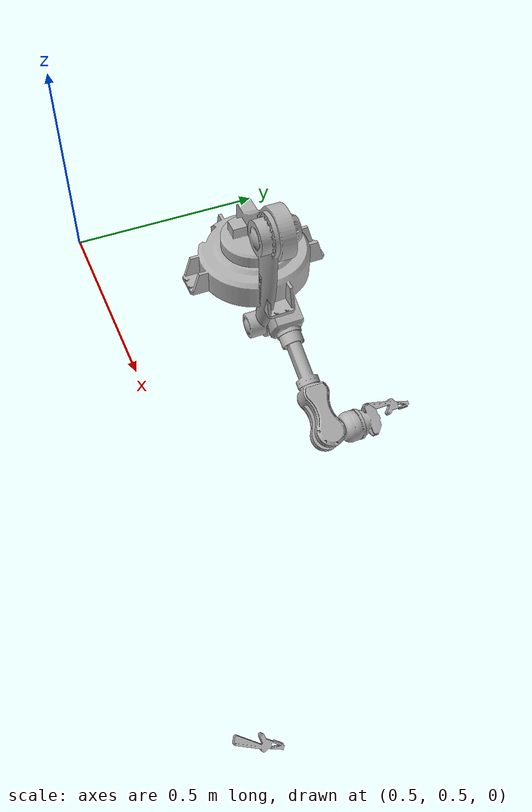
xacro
<?xml version="1.0" ?>
<robot name="robot_arm_urdf" xmlns:xacro="http://www.ros.org/wiki/xacro">

<xacro:include filename="$(find robot_arm_urdf_description)/urdf/materials.xacro" />
<xacro:include filename="$(find robot_arm_urdf_description)/urdf/robot_arm_urdf.trans" />
<xacro:include filename="$(find robot_arm_urdf_description)/urdf/robot_arm_urdf.gazebo" />
<link name="base_link">
  <inertial>
    <origin xyz="0.7299489098050387 0.9211145159593311 -0.003978753513613337" rpy="0 0 0"/>
    <mass value="45.313552829493865"/>
    <inertia ixx="0.286515" iyy="0.286515" izz="0.523139" ixy="0.006277" iyz="-0.000324" ixz="-0.000324"/>
  </inertial>
  <visual>
    <origin xyz="0 0 0" rpy="0 0 0"/>
    <geometry>
      <mesh filename="package://robot_arm_urdf_description/meshes/base_link.stl" scale="0.001 0.001 0.001"/>
    </geometry>
    <material name="silver"/>
  </visual>
  <collision>
    <origin xyz="0 0 0" rpy="0 0 0"/>
    <geometry>
      <mesh filename="package://robot_arm_urdf_description/meshes/base_link.stl" scale="0.001 0.001 0.001"/>
    </geometry>
  </collision>
</link>

<link name="link_1_1">
  <inertial>
    <origin xyz="0.05547469859400389 0.0019076328093232675 0.08222497118379582" rpy="0 0 0"/>
    <mass value="18.479095273079245"/>
    <inertia ixx="0.094682" iyy="0.189045" izz="0.130289" ixy="-0.00493" iyz="-0.003737" ixz="-0.072077"/>
  </inertial>
  <visual>
    <origin xyz="-0.728523 -0.919689 -0.04131" rpy="0 0 0"/>
    <geometry>
      <mesh filename="package://robot_arm_urdf_description/meshes/link_1_1.stl" scale="0.001 0.001 0.001"/>
    </geometry>
    <material name="silver"/>
  </visual>
  <collision>
    <origin xyz="-0.728523 -0.919689 -0.04131" rpy="0 0 0"/>
    <geometry>
      <mesh filename="package://robot_arm_urdf_description/meshes/link_1_1.stl" scale="0.001 0.001 0.001"/>
    </geometry>
  </collision>
</link>

<link name="link_2_1">
  <inertial>
    <origin xyz="-0.007889035262540256 -0.03522711435981485 0.1392997587206527" rpy="0 0 0"/>
    <mass value="7.036902684320055"/>
    <inertia ixx="0.137215" iyy="0.139817" izz="0.004767" ixy="0.000252" iyz="-0.000637" ixz="0.001302"/>
  </inertial>
  <visual>
    <origin xyz="-0.878523 -0.919689 -0.20131" rpy="0 0 0"/>
    <geometry>
      <mesh filename="package://robot_arm_urdf_description/meshes/link_2_1.stl" scale="0.001 0.001 0.001"/>
    </geometry>
    <material name="silver"/>
  </visual>
  <collision>
    <origin xyz="-0.878523 -0.919689 -0.20131" rpy="0 0 0"/>
    <geometry>
      <mesh filename="package://robot_arm_urdf_description/meshes/link_2_1.stl" scale="0.001 0.001 0.001"/>
    </geometry>
  </collision>
</link>

<link name="lin_3_1">
  <inertial>
    <origin xyz="0.027636883851309135 0.04590036665831099 0.04394820303244229" rpy="0 0 0"/>
    <mass value="10.082568263366674"/>
    <inertia ixx="0.015592" iyy="0.052081" izz="0.04708" ixy="-0.000566" iyz="-0.001062" ixz="-0.008168"/>
  </inertial>
  <visual>
    <origin xyz="-0.878523 -0.899689 -0.55131" rpy="0 0 0"/>
    <geometry>
      <mesh filename="package://robot_arm_urdf_description/meshes/lin_3_1.stl" scale="0.001 0.001 0.001"/>
    </geometry>
    <material name="silver"/>
  </visual>
  <collision>
    <origin xyz="-0.878523 -0.899689 -0.55131" rpy="0 0 0"/>
    <geometry>
      <mesh filename="package://robot_arm_urdf_description/meshes/lin_3_1.stl" scale="0.001 0.001 0.001"/>
    </geometry>
  </collision>
</link>

<link name="link_4_1">
  <inertial>
    <origin xyz="0.07875202527355363 -1.8848039107233205e-07 0.013886603415202536" rpy="0 0 0"/>
    <mass value="4.835467052165052"/>
    <inertia ixx="0.004815" iyy="0.016759" izz="0.015159" ixy="1.9e-05" iyz="-0.00011" ixz="-0.001882"/>
  </inertial>
  <visual>
    <origin xyz="-1.088352 -0.947689 -0.634002" rpy="0 0 0"/>
    <geometry>
      <mesh filename="package://robot_arm_urdf_description/meshes/link_4_1.stl" scale="0.001 0.001 0.001"/>
    </geometry>
    <material name="silver"/>
  </visual>
  <collision>
    <origin xyz="-1.088352 -0.947689 -0.634002" rpy="0 0 0"/>
    <geometry>
      <mesh filename="package://robot_arm_urdf_description/meshes/link_4_1.stl" scale="0.001 0.001 0.001"/>
    </geometry>
  </collision>
</link>

<link name="link_5_1">
  <inertial>
    <origin xyz="-0.004342850935737053 -0.05812006081435839 0.024630886505736527" rpy="0 0 0"/>
    <mass value="2.469305642949175"/>
    <inertia ixx="0.00247" iyy="0.001747" izz="0.002487" ixy="-1.5e-05" iyz="8.7e-05" ixz="-3e-06"/>
  </inertial>
  <visual>
    <origin xyz="-1.228147 -0.945728 -0.635892" rpy="0 0 0"/>
    <geometry>
      <mesh filename="package://robot_arm_urdf_description/meshes/link_5_1.stl" scale="0.001 0.001 0.001"/>
    </geometry>
    <material name="silver"/>
  </visual>
  <collision>
    <origin xyz="-1.228147 -0.945728 -0.635892" rpy="0 0 0"/>
    <geometry>
      <mesh filename="package://robot_arm_urdf_description/meshes/link_5_1.stl" scale="0.001 0.001 0.001"/>
    </geometry>
  </collision>
</link>

<link name="link_6_1">
  <inertial>
    <origin xyz="-9.560422361376553e-05 -0.006260879329750613 0.0005391148419688907" rpy="0 0 0"/>
    <mass value="0.5999254507989497"/>
    <inertia ixx="0.000254" iyy="0.000315" izz="0.000296" ixy="-0.0" iyz="-2e-06" ixz="-1.2e-05"/>
  </inertial>
  <visual>
    <origin xyz="-1.223114 -0.843867 -0.66444" rpy="0 0 0"/>
    <geometry>
      <mesh filename="package://robot_arm_urdf_description/meshes/link_6_1.stl" scale="0.001 0.001 0.001"/>
    </geometry>
    <material name="silver"/>
  </visual>
  <collision>
    <origin xyz="-1.223114 -0.843867 -0.66444" rpy="0 0 0"/>
    <geometry>
      <mesh filename="package://robot_arm_urdf_description/meshes/link_6_1.stl" scale="0.001 0.001 0.001"/>
    </geometry>
  </collision>
</link>

<link name="201150_arm_8_1">
  <inertial>
    <origin xyz="-0.8165476397479572 1.2887887211154174 0.5190795214401218" rpy="0 0 0"/>
    <mass value="0.0018372819236357237"/>
    <inertia ixx="0.0" iyy="0.0" izz="0.0" ixy="0.0" iyz="-0.0" ixz="0.0"/>
  </inertial>
  <visual>
    <origin xyz="-2.078736 0.467417 -0.157874" rpy="0 0 0"/>
    <geometry>
      <mesh filename="package://robot_arm_urdf_description/meshes/201150_arm_8_1.stl" scale="0.001 0.001 0.001"/>
    </geometry>
    <material name="silver"/>
  </visual>
  <collision>
    <origin xyz="-2.078736 0.467417 -0.157874" rpy="0 0 0"/>
    <geometry>
      <mesh filename="package://robot_arm_urdf_description/meshes/201150_arm_8_1.stl" scale="0.001 0.001 0.001"/>
    </geometry>
  </collision>
</link>

<link name="201150_arm_8_2">
  <inertial>
    <origin xyz="-0.8760432617283416 1.209732732943569 0.5096056220794594" rpy="0 0 0"/>
    <mass value="0.0018372819236357237"/>
    <inertia ixx="0.0" iyy="0.0" izz="0.0" ixy="0.0" iyz="-0.0" ixz="0.0"/>
  </inertial>
  <visual>
    <origin xyz="-2.059389 0.388981 -0.14625" rpy="0 0 0"/>
    <geometry>
      <mesh filename="package://robot_arm_urdf_description/meshes/201150_arm_8_2.stl" scale="0.001 0.001 0.001"/>
    </geometry>
    <material name="silver"/>
  </visual>
  <collision>
    <origin xyz="-2.059389 0.388981 -0.14625" rpy="0 0 0"/>
    <geometry>
      <mesh filename="package://robot_arm_urdf_description/meshes/201150_arm_8_2.stl" scale="0.001 0.001 0.001"/>
    </geometry>
  </collision>
</link>

<link name="grp_2_1">
  <inertial>
    <origin xyz="1.4030855882008075 -0.7859836317379246 -0.40192552154346695" rpy="0 0 0"/>
    <mass value="0.3016933412423669"/>
    <inertia ixx="0.000328" iyy="4.6e-05" izz="0.000356" ixy="-7.4e-05" iyz="8e-06" ixz="-1e-06"/>
  </inertial>
  <visual>
    <origin xyz="0.157787 -1.557114 -1.078881" rpy="0 0 0"/>
    <geometry>
      <mesh filename="package://robot_arm_urdf_description/meshes/grp_2_1.stl" scale="0.001 0.001 0.001"/>
    </geometry>
    <material name="silver"/>
  </visual>
  <collision>
    <origin xyz="0.157787 -1.557114 -1.078881" rpy="0 0 0"/>
    <geometry>
      <mesh filename="package://robot_arm_urdf_description/meshes/grp_2_1.stl" scale="0.001 0.001 0.001"/>
    </geometry>
  </collision>
</link>

<link name="grp_2_2">
  <inertial>
    <origin xyz="-0.4510100026229269 -1.384759698451449 -0.8453559495570071" rpy="0 0 0"/>
    <mass value="0.3016933412423669"/>
    <inertia ixx="0.000341" iyy="3.7e-05" izz="0.000351" ixy="3.9e-05" iyz="3.9e-05" ixz="-8e-06"/>
  </inertial>
  <visual>
    <origin xyz="-1.645407 -2.154231 -1.508804" rpy="0 0 0"/>
    <geometry>
      <mesh filename="package://robot_arm_urdf_description/meshes/grp_2_2.stl" scale="0.001 0.001 0.001"/>
    </geometry>
    <material name="silver"/>
  </visual>
  <collision>
    <origin xyz="-1.645407 -2.154231 -1.508804" rpy="0 0 0"/>
    <geometry>
      <mesh filename="package://robot_arm_urdf_description/meshes/grp_2_2.stl" scale="0.001 0.001 0.001"/>
    </geometry>
  </collision>
</link>

<joint name="joint_1" type="revolute">
  <origin xyz="0.728523 0.919689 0.04131" rpy="0 0 0"/>
  <parent link="base_link"/>
  <child link="link_1_1"/>
  <axis xyz="0.0 -0.0 1.0"/>
  <limit upper="0.0" lower="-6.195919" effort="100" velocity="100"/>
</joint>

<joint name="joint_2" type="revolute">
  <origin xyz="0.15 0.0 0.16" rpy="0 0 0"/>
  <parent link="link_1_1"/>
  <child link="link_2_1"/>
  <axis xyz="0.0 -1.0 -0.0"/>
  <limit upper="4.537856" lower="1.48353" effort="100" velocity="100"/>
</joint>

<joint name="joint_3" type="revolute">
  <origin xyz="0.0 -0.02 0.35" rpy="0 0 0"/>
  <parent link="link_2_1"/>
  <child link="lin_3_1"/>
  <axis xyz="-0.0 1.0 0.0"/>
  <limit upper="5.934119" lower="1.308997" effort="100" velocity="100"/>
</joint>

<joint name="joint_4" type="revolute">
  <origin xyz="0.209829 0.048 0.082692" rpy="0 0 0"/>
  <parent link="lin_3_1"/>
  <child link="link_4_1"/>
  <axis xyz="0.984808 -0.0 0.173648"/>
  <limit upper="-0.087266" lower="-6.108652" effort="100" velocity="100"/>
</joint>

<joint name="joint_5" type="revolute">
  <origin xyz="0.139795 -0.001961 0.00189" rpy="0 0 0"/>
  <parent link="link_4_1"/>
  <child link="link_5_1"/>
  <axis xyz="-0.172987 0.087156 0.98106"/>
  <limit upper="3.490659" lower="-0.436332" effort="100" velocity="100"/>
</joint>

<joint name="joint_6" type="revolute">
  <origin xyz="-0.005033 -0.101861 0.028548" rpy="0 0 0"/>
  <parent link="link_5_1"/>
  <child link="link_6_1"/>
  <axis xyz="-0.015134 -0.996195 0.085832"/>
  <limit upper="-0.087266" lower="-6.195919" effort="100" velocity="100"/>
</joint>

<joint name="Rigid 7" type="fixed">
  <origin xyz="0.855622 -1.311284 -0.506566" rpy="0 0 0"/>
  <parent link="link_6_1"/>
  <child link="201150_arm_8_1"/>
</joint>

<joint name="Rigid 8" type="fixed">
  <origin xyz="0.836275 -1.232848 -0.51819" rpy="0 0 0"/>
  <parent link="link_6_1"/>
  <child link="201150_arm_8_2"/>
</joint>

<joint name="joint_9" type="revolute">
  <origin xyz="-2.236523 2.024531 0.921007" rpy="0 0 0"/>
  <parent link="201150_arm_8_1"/>
  <child link="grp_2_1"/>
  <axis xyz="-0.258161 0.086824 0.962193"/>
  <limit upper="1.134464" lower="0.0" effort="100" velocity="100"/>
</joint>

<joint name="joint_10" type="revolute">
  <origin xyz="-0.413982 2.543212 1.362554" rpy="0 0 0"/>
  <parent link="201150_arm_8_2"/>
  <child link="grp_2_2"/>
  <axis xyz="-0.258161 0.086824 0.962193"/>
  <limit upper="-0.087266" lower="-1.134464" effort="100" velocity="100"/>
</joint>

</robot>

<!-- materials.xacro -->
<robot name="robot_arm_urdf" xmlns:xacro="http://www.ros.org/wiki/xacro" >

<material name="silver">
  <color rgba="0.700 0.700 0.700 1.000"/>
</material>

</robot>

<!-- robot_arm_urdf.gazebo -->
<robot name="robot_arm_urdf" xmlns:xacro="http://www.ros.org/wiki/xacro" >

<xacro:property name="body_color" value="Gazebo/Silver" />

<gazebo>
  <plugin name="control" filename="libgazebo_ros_control.so"/>
</gazebo>
<gazebo reference="base_link">
  <material>${body_color}</material>
  <mu1>0.2</mu1>
  <mu2>0.2</mu2>
  <selfCollide>true</selfCollide>
  <gravity>true</gravity>
</gazebo>

<gazebo reference="link_1_1">
  <material>${body_color}</material>
  <mu1>0.2</mu1>
  <mu2>0.2</mu2>
  <selfCollide>true</selfCollide>
</gazebo>

<gazebo reference="link_2_1">
  <material>${body_color}</material>
  <mu1>0.2</mu1>
  <mu2>0.2</mu2>
  <selfCollide>true</selfCollide>
</gazebo>

<gazebo reference="lin_3_1">
  <material>${body_color}</material>
  <mu1>0.2</mu1>
  <mu2>0.2</mu2>
  <selfCollide>true</selfCollide>
</gazebo>

<gazebo reference="link_4_1">
  <material>${body_color}</material>
  <mu1>0.2</mu1>
  <mu2>0.2</mu2>
  <selfCollide>true</selfCollide>
</gazebo>

<gazebo reference="link_5_1">
  <material>${body_color}</material>
  <mu1>0.2</mu1>
  <mu2>0.2</mu2>
  <selfCollide>true</selfCollide>
</gazebo>

<gazebo reference="link_6_1">
  <material>${body_color}</material>
  <mu1>0.2</mu1>
  <mu2>0.2</mu2>
  <selfCollide>true</selfCollide>
</gazebo>

<gazebo reference="201150_arm_8_1">
  <material>${body_color}</material>
  <mu1>0.2</mu1>
  <mu2>0.2</mu2>
  <selfCollide>true</selfCollide>
</gazebo>

<gazebo reference="201150_arm_8_2">
  <material>${body_color}</material>
  <mu1>0.2</mu1>
  <mu2>0.2</mu2>
  <selfCollide>true</selfCollide>
</gazebo>

<gazebo reference="grp_2_1">
  <material>${body_color}</material>
  <mu1>0.2</mu1>
  <mu2>0.2</mu2>
  <selfCollide>true</selfCollide>
</gazebo>

<gazebo reference="grp_2_2">
  <material>${body_color}</material>
  <mu1>0.2</mu1>
  <mu2>0.2</mu2>
  <selfCollide>true</selfCollide>
</gazebo>

</robot>
